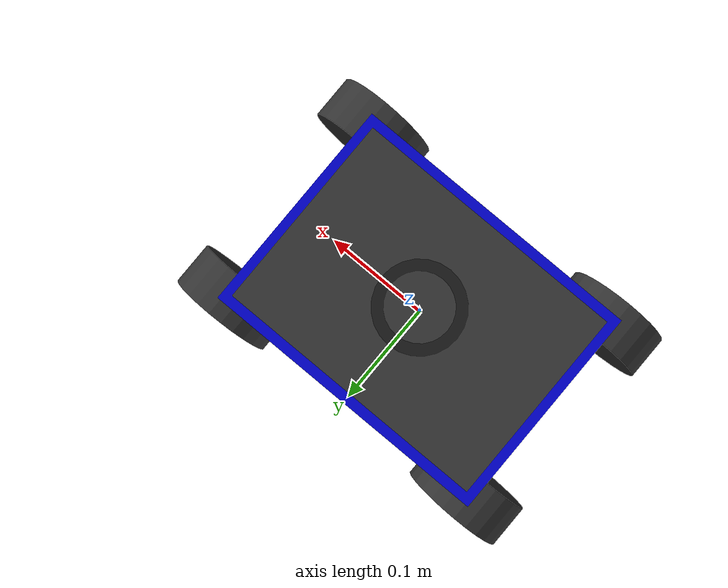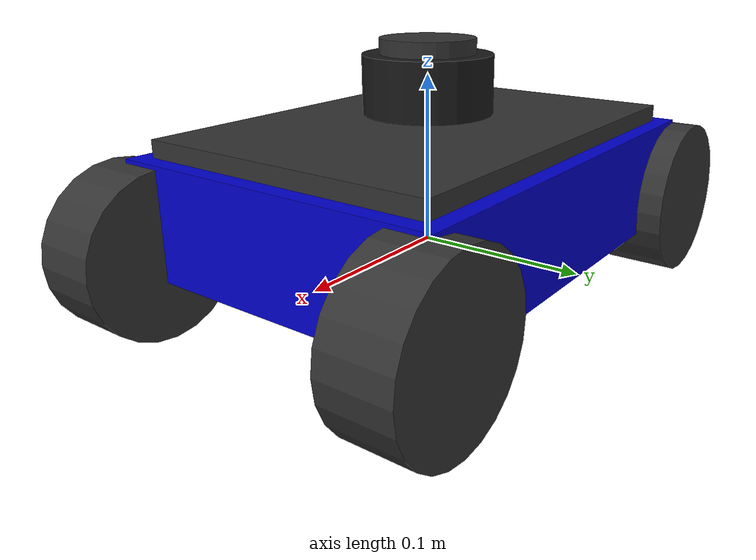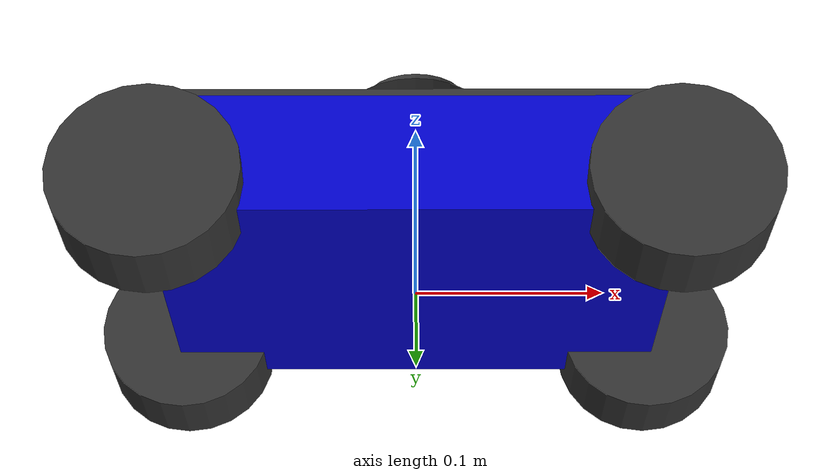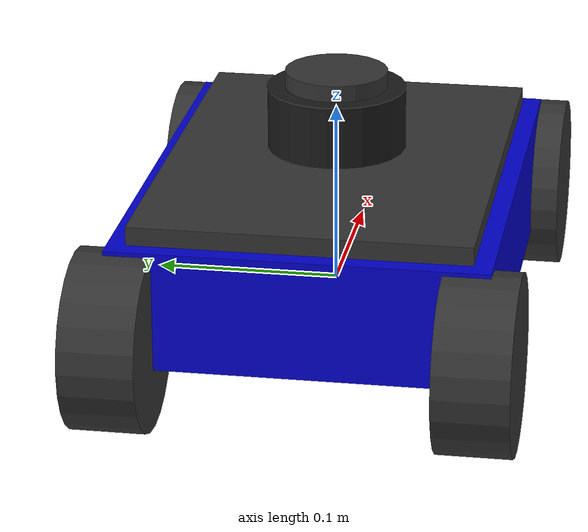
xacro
<?xml version="1.0"?>
<robot name="rosmaster_x3" xmlns:xacro="http://www.ros.org/wiki/xacro">

  <!-- Properties                                                        -->

  <!-- Chassis dimensions (ROSMASTER X3) -->
  <xacro:property name="chassis_length" value="0.270"/>
  <xacro:property name="chassis_width"  value="0.200"/>
  <xacro:property name="chassis_height" value="0.065"/>
  <xacro:property name="chassis_mass"   value="2.0"/>     <!-- kg -->

  <!-- Wheel geometry -->
  <xacro:property name="wheel_radius"   value="0.048"/>
  <xacro:property name="wheel_width"    value="0.040"/>
  <xacro:property name="wheel_mass"     value="0.25"/>    <!-- kg -->

  <!-- Wheel placement — X configuration (all 4 corners)             -->
  <!-- wheel_x_offset = wheel_separation_x / 2 = 0.265 / 2          -->
  <!-- wheel_y_offset = wheel_separation_y / 2 = 0.190 / 2          -->
  <xacro:property name="wheel_x_offset" value="0.1325"/> <!-- m from center -->
  <xacro:property name="wheel_y_offset" value="0.095"/>  <!-- m from center -->
  <xacro:property name="wheel_z_offset" value="-0.0175"/><!-- wheel axis below chassis center -->

  <!-- Clearance: distance from ground to bottom of chassis -->
  <xacro:property name="ground_clearance" value="0.0305"/>
  <!-- ground_clearance = wheel_radius - |wheel_z_offset| - chassis_height/2
       = 0.048 - 0.0175 - 0.0325 = -0.002  → chassis bottom at 0.048 - 0.0175 = 0.0305 above ground -->

  <!-- Computed inertia helpers -->
  <!-- Cylinder (wheel): axis along Y, so Ixx=Izz=m(3r²+h²)/12, Iyy=mr²/2 -->
  <xacro:property name="wheel_ixx"
    value="${wheel_mass * (3*wheel_radius*wheel_radius + wheel_width*wheel_width) / 12.0}"/>
  <xacro:property name="wheel_iyy"
    value="${wheel_mass * wheel_radius * wheel_radius / 2.0}"/>

  <!-- Includes                                                          -->
  <xacro:include filename="$(find rosmaster_description)/urdf/materials.xacro"/>
  <xacro:include filename="$(find rosmaster_description)/urdf/rplidar.xacro"/>

  <!-- ros2_control — hardware selection via use_sim argument            -->
  <xacro:arg name="use_sim" default="true"/>

  <xacro:if value="$(arg use_sim)">
    <ros2_control name="rosmaster_x3_system" type="system">
      <hardware>
        <plugin>gz_ros2_control/GazeboSimSystem</plugin>
      </hardware>
      <joint name="front_left_wheel_joint">
        <command_interface name="velocity">
          <param name="min">-10.0</param>
          <param name="max">10.0</param>
        </command_interface>
        <state_interface name="position"/>
        <state_interface name="velocity"/>
      </joint>
      <joint name="front_right_wheel_joint">
        <command_interface name="velocity">
          <param name="min">-10.0</param>
          <param name="max">10.0</param>
        </command_interface>
        <state_interface name="position"/>
        <state_interface name="velocity"/>
      </joint>
      <joint name="rear_left_wheel_joint">
        <command_interface name="velocity">
          <param name="min">-10.0</param>
          <param name="max">10.0</param>
        </command_interface>
        <state_interface name="position"/>
        <state_interface name="velocity"/>
      </joint>
      <joint name="rear_right_wheel_joint">
        <command_interface name="velocity">
          <param name="min">-10.0</param>
          <param name="max">10.0</param>
        </command_interface>
        <state_interface name="position"/>
        <state_interface name="velocity"/>
      </joint>
    </ros2_control>
  </xacro:if>

  <xacro:unless value="$(arg use_sim)">
    <ros2_control name="rosmaster_x3_system" type="system">
      <hardware>
        <!-- Yahboom STM32 serial hardware interface -->
        <plugin>rosmaster_hardware/RosmasterHardware</plugin>
        <param name="port">/dev/ttyUSB0</param>
        <param name="baud_rate">115200</param>
      </hardware>
      <joint name="front_left_wheel_joint">
        <command_interface name="velocity">
          <param name="min">-10.0</param>
          <param name="max">10.0</param>
        </command_interface>
        <state_interface name="position"/>
        <state_interface name="velocity"/>
      </joint>
      <joint name="front_right_wheel_joint">
        <command_interface name="velocity">
          <param name="min">-10.0</param>
          <param name="max">10.0</param>
        </command_interface>
        <state_interface name="position"/>
        <state_interface name="velocity"/>
      </joint>
      <joint name="rear_left_wheel_joint">
        <command_interface name="velocity">
          <param name="min">-10.0</param>
          <param name="max">10.0</param>
        </command_interface>
        <state_interface name="position"/>
        <state_interface name="velocity"/>
      </joint>
      <joint name="rear_right_wheel_joint">
        <command_interface name="velocity">
          <param name="min">-10.0</param>
          <param name="max">10.0</param>
        </command_interface>
        <state_interface name="position"/>
        <state_interface name="velocity"/>
      </joint>
    </ros2_control>
  </xacro:unless>

  <!-- base_footprint — ground projection                               -->
  <link name="base_footprint"/>

  <joint name="base_footprint_joint" type="fixed">
    <parent link="base_footprint"/>
    <child link="base_link"/>
    <!-- chassis center sits at wheel_radius + wheel_z_offset above ground -->
    <origin xyz="0 0 ${wheel_radius + wheel_z_offset}" rpy="0 0 0"/>
  </joint>

  <!-- base_link — chassis body                                         -->
  <link name="base_link">
    <visual>
      <origin xyz="0 0 0" rpy="0 0 0"/>
      <geometry>
        <box size="${chassis_length} ${chassis_width} ${chassis_height}"/>
      </geometry>
      <material name="blue"/>
    </visual>

    <collision>
      <origin xyz="0 0 0" rpy="0 0 0"/>
      <geometry>
        <box size="${chassis_length} ${chassis_width} ${chassis_height}"/>
      </geometry>
    </collision>

    <inertial>
      <origin xyz="0 0 0" rpy="0 0 0"/>
      <mass value="${chassis_mass}"/>
      <!-- Solid rectangular box: Ixx=m(w²+h²)/12, Iyy=m(l²+h²)/12, Izz=m(l²+w²)/12 -->
      <inertia
        ixx="${chassis_mass*(chassis_width*chassis_width  + chassis_height*chassis_height)/12.0}"
        ixy="0.0" ixz="0.0"
        iyy="${chassis_mass*(chassis_length*chassis_length + chassis_height*chassis_height)/12.0}"
        iyz="0.0"
        izz="${chassis_mass*(chassis_length*chassis_length + chassis_width*chassis_width)/12.0}"/>
    </inertial>
  </link>

  <!-- Gazebo Harmonic material: use ambient/diffuse instead of Gazebo/Blue URI -->
  <gazebo reference="base_link">
    <visual>
      <material>
        <ambient>0.0 0.0 0.8 1</ambient>
        <diffuse>0.0 0.0 0.8 1</diffuse>
        <specular>0.1 0.1 0.3 1</specular>
      </material>
    </visual>
  </gazebo>

  <!-- Top plate                                                         -->
  <joint name="top_plate_joint" type="fixed">
    <parent link="base_link"/>
    <child link="top_plate_link"/>
    <origin xyz="0 0 ${chassis_height/2 + 0.005}" rpy="0 0 0"/>
  </joint>

  <link name="top_plate_link">
    <visual>
      <origin xyz="0 0 0" rpy="0 0 0"/>
      <geometry>
        <box size="${chassis_length - 0.02} ${chassis_width - 0.02} 0.010"/>
      </geometry>
      <material name="dark_grey"/>
    </visual>
    <collision>
      <origin xyz="0 0 0" rpy="0 0 0"/>
      <geometry>
        <box size="${chassis_length - 0.02} ${chassis_width - 0.02} 0.010"/>
      </geometry>
    </collision>
    <inertial>
      <mass value="0.1"/>
      <inertia ixx="0.0001" ixy="0.0" ixz="0.0"
               iyy="0.0001" iyz="0.0" izz="0.0002"/>
    </inertial>
  </link>

  <gazebo reference="top_plate_link">
    <visual>
      <material>
        <ambient>0.2 0.2 0.2 1</ambient>
        <diffuse>0.2 0.2 0.2 1</diffuse>
        <specular>0.1 0.1 0.1 1</specular>
      </material>
    </visual>
  </gazebo>

  <!-- Mecanum wheels — X configuration                                 -->
  <!--  Roller orientation (45°) determines fdir1 in world frame:       -->
  <!--   FL (+x,+y): rollers at +45° → fdir1 = ( 0.707,  0.707, 0)    -->
  <!--   FR (+x,-y): rollers at -45° → fdir1 = ( 0.707, -0.707, 0)    -->
  <!--   RL (-x,+y): rollers at -45° → fdir1 = (-0.707,  0.707, 0)    -->
  <!--   RR (-x,-y): rollers at +45° → fdir1 = (-0.707, -0.707, 0)    -->

  <!-- Front Left wheel -->
  <joint name="front_left_wheel_joint" type="continuous">
    <parent link="base_link"/>
    <child link="front_left_wheel_link"/>
    <origin xyz="${wheel_x_offset} ${wheel_y_offset} ${wheel_z_offset}" rpy="0 0 0"/>
    <axis xyz="0 1 0"/>
    <dynamics damping="0.01" friction="0.1"/>
    <limit effort="10.0" velocity="10.0"/>
  </joint>

  <link name="front_left_wheel_link">
    <visual>
      <origin xyz="0 0 0" rpy="${pi/2} 0 0"/>
      <geometry><cylinder radius="${wheel_radius}" length="${wheel_width}"/></geometry>
      <material name="dark_grey"/>
    </visual>
    <collision>
      <origin xyz="0 0 0" rpy="${pi/2} 0 0"/>
      <geometry><cylinder radius="${wheel_radius}" length="${wheel_width}"/></geometry>
    </collision>
    <inertial>
      <origin xyz="0 0 0" rpy="0 0 0"/>
      <mass value="${wheel_mass}"/>
      <inertia ixx="${wheel_ixx}" ixy="0.0" ixz="0.0"
               iyy="${wheel_iyy}" iyz="0.0"
               izz="${wheel_ixx}"/>
    </inertial>
  </link>

  <gazebo reference="front_left_wheel_link">
    <mu1>0.5</mu1>
    <mu2>0.1</mu2>
    <fdir1>0.707 0.707 0</fdir1>
    <kp>1e6</kp>
    <kd>1.0</kd>
    <minDepth>0.001</minDepth>
    <maxVel>1.0</maxVel>
    <visual>
      <material>
        <ambient>0.15 0.15 0.15 1</ambient>
        <diffuse>0.15 0.15 0.15 1</diffuse>
        <specular>0.1 0.1 0.1 1</specular>
      </material>
    </visual>
  </gazebo>

  <!-- Front Right wheel -->
  <joint name="front_right_wheel_joint" type="continuous">
    <parent link="base_link"/>
    <child link="front_right_wheel_link"/>
    <origin xyz="${wheel_x_offset} ${-wheel_y_offset} ${wheel_z_offset}" rpy="0 0 0"/>
    <axis xyz="0 1 0"/>
    <dynamics damping="0.01" friction="0.1"/>
    <limit effort="10.0" velocity="10.0"/>
  </joint>

  <link name="front_right_wheel_link">
    <visual>
      <origin xyz="0 0 0" rpy="${pi/2} 0 0"/>
      <geometry><cylinder radius="${wheel_radius}" length="${wheel_width}"/></geometry>
      <material name="dark_grey"/>
    </visual>
    <collision>
      <origin xyz="0 0 0" rpy="${pi/2} 0 0"/>
      <geometry><cylinder radius="${wheel_radius}" length="${wheel_width}"/></geometry>
    </collision>
    <inertial>
      <origin xyz="0 0 0" rpy="0 0 0"/>
      <mass value="${wheel_mass}"/>
      <inertia ixx="${wheel_ixx}" ixy="0.0" ixz="0.0"
               iyy="${wheel_iyy}" iyz="0.0"
               izz="${wheel_ixx}"/>
    </inertial>
  </link>

  <gazebo reference="front_right_wheel_link">
    <mu1>0.5</mu1>
    <mu2>0.1</mu2>
    <fdir1>0.707 -0.707 0</fdir1>
    <kp>1e6</kp>
    <kd>1.0</kd>
    <minDepth>0.001</minDepth>
    <maxVel>1.0</maxVel>
    <visual>
      <material>
        <ambient>0.15 0.15 0.15 1</ambient>
        <diffuse>0.15 0.15 0.15 1</diffuse>
        <specular>0.1 0.1 0.1 1</specular>
      </material>
    </visual>
  </gazebo>

  <!-- Rear Left wheel -->
  <joint name="rear_left_wheel_joint" type="continuous">
    <parent link="base_link"/>
    <child link="rear_left_wheel_link"/>
    <origin xyz="${-wheel_x_offset} ${wheel_y_offset} ${wheel_z_offset}" rpy="0 0 0"/>
    <axis xyz="0 1 0"/>
    <dynamics damping="0.01" friction="0.1"/>
    <limit effort="10.0" velocity="10.0"/>
  </joint>

  <link name="rear_left_wheel_link">
    <visual>
      <origin xyz="0 0 0" rpy="${pi/2} 0 0"/>
      <geometry><cylinder radius="${wheel_radius}" length="${wheel_width}"/></geometry>
      <material name="dark_grey"/>
    </visual>
    <collision>
      <origin xyz="0 0 0" rpy="${pi/2} 0 0"/>
      <geometry><cylinder radius="${wheel_radius}" length="${wheel_width}"/></geometry>
    </collision>
    <inertial>
      <origin xyz="0 0 0" rpy="0 0 0"/>
      <mass value="${wheel_mass}"/>
      <inertia ixx="${wheel_ixx}" ixy="0.0" ixz="0.0"
               iyy="${wheel_iyy}" iyz="0.0"
               izz="${wheel_ixx}"/>
    </inertial>
  </link>

  <gazebo reference="rear_left_wheel_link">
    <mu1>0.5</mu1>
    <mu2>0.1</mu2>
    <fdir1>-0.707 0.707 0</fdir1>
    <kp>1e6</kp>
    <kd>1.0</kd>
    <minDepth>0.001</minDepth>
    <maxVel>1.0</maxVel>
    <visual>
      <material>
        <ambient>0.15 0.15 0.15 1</ambient>
        <diffuse>0.15 0.15 0.15 1</diffuse>
        <specular>0.1 0.1 0.1 1</specular>
      </material>
    </visual>
  </gazebo>

  <!-- Rear Right wheel -->
  <joint name="rear_right_wheel_joint" type="continuous">
    <parent link="base_link"/>
    <child link="rear_right_wheel_link"/>
    <origin xyz="${-wheel_x_offset} ${-wheel_y_offset} ${wheel_z_offset}" rpy="0 0 0"/>
    <axis xyz="0 1 0"/>
    <dynamics damping="0.01" friction="0.1"/>
    <limit effort="10.0" velocity="10.0"/>
  </joint>

  <link name="rear_right_wheel_link">
    <visual>
      <origin xyz="0 0 0" rpy="${pi/2} 0 0"/>
      <geometry><cylinder radius="${wheel_radius}" length="${wheel_width}"/></geometry>
      <material name="dark_grey"/>
    </visual>
    <collision>
      <origin xyz="0 0 0" rpy="${pi/2} 0 0"/>
      <geometry><cylinder radius="${wheel_radius}" length="${wheel_width}"/></geometry>
    </collision>
    <inertial>
      <origin xyz="0 0 0" rpy="0 0 0"/>
      <mass value="${wheel_mass}"/>
      <inertia ixx="${wheel_ixx}" ixy="0.0" ixz="0.0"
               iyy="${wheel_iyy}" iyz="0.0"
               izz="${wheel_ixx}"/>
    </inertial>
  </link>

  <gazebo reference="rear_right_wheel_link">
    <mu1>0.5</mu1>
    <mu2>0.1</mu2>
    <fdir1>-0.707 -0.707 0</fdir1>
    <kp>1e6</kp>
    <kd>1.0</kd>
    <minDepth>0.001</minDepth>
    <maxVel>1.0</maxVel>
    <visual>
      <material>
        <ambient>0.15 0.15 0.15 1</ambient>
        <diffuse>0.15 0.15 0.15 1</diffuse>
        <specular>0.1 0.1 0.1 1</specular>
      </material>
    </visual>
  </gazebo>

  <!-- IMU MPU9250 — centro del chasis                                  -->
  <joint name="imu_joint" type="fixed">
    <parent link="base_link"/>
    <child link="imu_link"/>
    <origin xyz="0 0 0.05" rpy="0 0 0"/>
  </joint>

  <link name="imu_link">
    <inertial>
      <mass value="0.001"/>
      <inertia ixx="1e-7" ixy="0.0" ixz="0.0"
               iyy="1e-7" iyz="0.0"
               izz="1e-7"/>
    </inertial>
  </link>

  <!-- RPLIDAR A1M8 — top plate center                                  -->
  <xacro:rplidar_a1
    parent="base_link"
    x_pos="0.0"
    y_pos="0.0"
    z_pos="${chassis_height/2 + 0.015}"/>

  <!-- Gazebo Harmonic — gz_ros2_control plugin                         -->
  <!-- Points to mecanum_controllers.yaml for controller configuration  -->
  <gazebo>
    <plugin filename="gz_ros2_control-system"
            name="gz_ros2_control::GazeboSimROS2ControlPlugin">
      <parameters>$(find rosmaster_description)/config/mecanum_controllers.yaml</parameters>
    </plugin>
  </gazebo>

</robot>

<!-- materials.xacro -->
<robot xmlns:xacro="http://www.ros.org/wiki/xacro">

  <material name="black">
    <color rgba="0.1 0.1 0.1 1.0"/>
  </material>

  <material name="dark_grey">
    <color rgba="0.2 0.2 0.2 1.0"/>
  </material>

  <material name="grey">
    <color rgba="0.5 0.5 0.5 1.0"/>
  </material>

  <material name="light_grey">
    <color rgba="0.7 0.7 0.7 1.0"/>
  </material>

  <material name="white">
    <color rgba="0.9 0.9 0.9 1.0"/>
  </material>

  <material name="blue">
    <color rgba="0.0 0.0 0.8 1.0"/>
  </material>

  <material name="red">
    <color rgba="0.8 0.0 0.0 1.0"/>
  </material>

  <material name="yellow">
    <color rgba="0.8 0.8 0.0 1.0"/>
  </material>

</robot>

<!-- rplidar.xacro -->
<robot xmlns:xacro="http://www.ros.org/wiki/xacro">

  <!--
    RPLIDAR A1M8 macro
    Parameters:
      parent : parent link
      x_pos  : x offset
      y_pos  : y offset
      z_pos  : z offset
  -->
  <xacro:macro name="rplidar_a1" params="parent x_pos y_pos z_pos">

    <joint name="lidar_joint" type="fixed">
      <parent link="${parent}"/>
      <child link="lidar_link"/>
      <origin xyz="${x_pos} ${y_pos} ${z_pos}" rpy="0 0 0"/>
    </joint>

    <link name="lidar_link">
      <!-- Main body -->
      <visual>
        <origin xyz="0 0 0.017" rpy="0 0 0"/>
        <geometry>
          <cylinder radius="0.038" length="0.034"/>
        </geometry>
        <material name="black"/>
      </visual>

      <!-- Rotating head -->
      <visual>
        <origin xyz="0 0 0.038" rpy="0 0 0"/>
        <geometry>
          <cylinder radius="0.028" length="0.010"/>
        </geometry>
        <material name="dark_grey"/>
      </visual>

      <collision>
        <origin xyz="0 0 0.022" rpy="0 0 0"/>
        <geometry>
          <cylinder radius="0.038" length="0.044"/>
        </geometry>
      </collision>

      <inertial>
        <origin xyz="0 0 0.022" rpy="0 0 0"/>
        <mass value="0.17"/>
        <inertia
          ixx="0.0000833" ixy="0.0" ixz="0.0"
          iyy="0.0000833" iyz="0.0"
          izz="0.0001225"/>
      </inertial>
    </link>

    <!-- Laser scan frame (offset from lidar_link center) -->
    <joint name="laser_frame_joint" type="fixed">
      <parent link="lidar_link"/>
      <child link="laser_frame"/>
      <origin xyz="0 0 0.038" rpy="0 0 0"/>
    </joint>

    <link name="laser_frame"/>

    <!-- Gazebo sensor plugin — CPU ray-casting lidar (compatible RPi5 sin GPU) -->
    <gazebo reference="laser_frame">
      <sensor name="rplidar_a1" type="lidar">
        <topic>scan</topic>
        <update_rate>10</update_rate>
        <lidar>
          <scan>
            <horizontal>
              <samples>360</samples>
              <resolution>1</resolution>
              <min_angle>-3.14159265</min_angle>
              <max_angle>3.14159265</max_angle>
            </horizontal>
          </scan>
          <range>
            <min>0.15</min>
            <max>12.0</max>
            <resolution>0.01</resolution>
          </range>
          <noise>
            <type>gaussian</type>
            <mean>0.0</mean>
            <stddev>0.01</stddev>
          </noise>
        </lidar>
        <always_on>true</always_on>
        <visualize>false</visualize>
      </sensor>
    </gazebo>

  </xacro:macro>

</robot>
